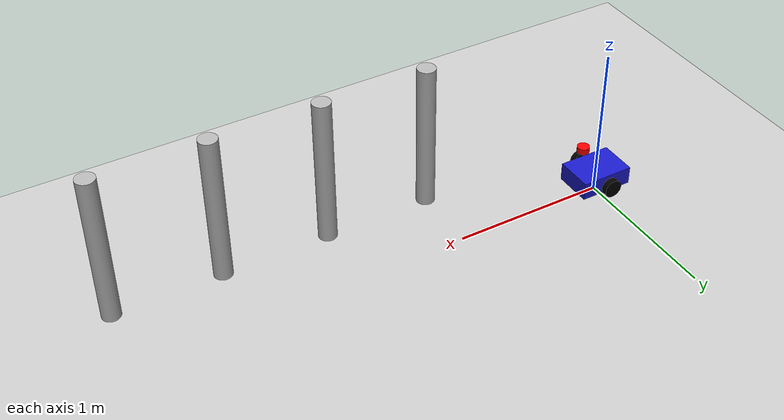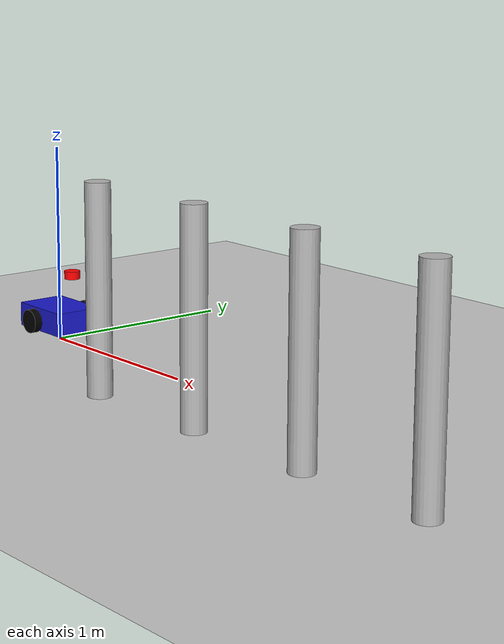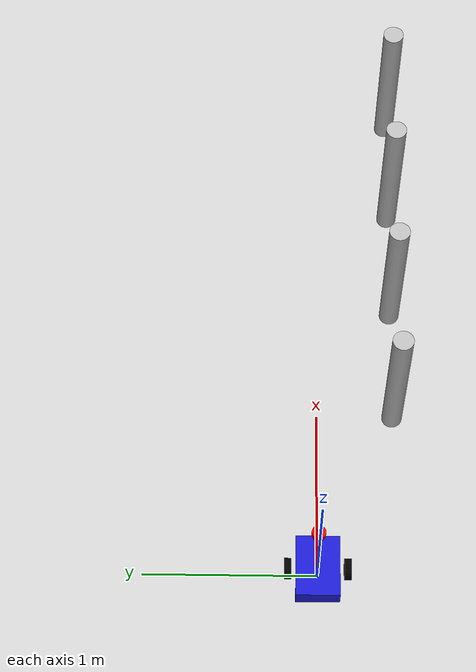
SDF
<?xml version="1.0" ?>
<sdf version="1.6">
  <world name="single_row_orchard">

    <include>
      <uri>model://sun</uri>
    </include>

    <include>
      <uri>model://ground_plane</uri>
    </include>

    <!-- SIMPLE DIFFERENTIAL DRIVE ROBOT -->
    <model name="demo_rosbot">
      <pose>0 0 0.12 0 0 0</pose>

      <link name="base_link">
        <inertial>
          <mass>2.0</mass>
          <inertia>
            <ixx>0.05</ixx>
            <iyy>0.05</iyy>
            <izz>0.05</izz>
            <ixy>0</ixy>
            <ixz>0</ixz>
            <iyz>0</iyz>
          </inertia>
        </inertial>

        <collision name="base_collision">
          <geometry>
            <box>
              <size>0.35 0.25 0.12</size>
            </box>
          </geometry>
        </collision>

        <visual name="base_visual">
          <geometry>
            <box>
              <size>0.35 0.25 0.12</size>
            </box>
          </geometry>
          <material>
            <ambient>0.1 0.1 0.8 1</ambient>
            <diffuse>0.1 0.1 0.8 1</diffuse>
          </material>
        </visual>
      </link>

      <!-- LEFT WHEEL -->
      <link name="left_wheel">
        <pose>0 0.17 0 1.5708 0 0</pose>
        <inertial>
          <mass>0.2</mass>
          <inertia>
            <ixx>0.001</ixx>
            <iyy>0.001</iyy>
            <izz>0.001</izz>
            <ixy>0</ixy>
            <ixz>0</ixz>
            <iyz>0</iyz>
          </inertia>
        </inertial>
        <collision name="collision">
          <geometry>
            <cylinder>
              <radius>0.06</radius>
              <length>0.04</length>
            </cylinder>
          </geometry>
        </collision>
        <visual name="visual">
          <geometry>
            <cylinder>
              <radius>0.06</radius>
              <length>0.04</length>
            </cylinder>
          </geometry>
          <material>
            <ambient>0 0 0 1</ambient>
            <diffuse>0 0 0 1</diffuse>
          </material>
        </visual>
      </link>

      <joint name="left_wheel_joint" type="revolute">
        <parent>base_link</parent>
        <child>left_wheel</child>
        <axis>
          <xyz>0 1 0</xyz>
        </axis>
      </joint>

      <!-- RIGHT WHEEL -->
      <link name="right_wheel">
        <pose>0 -0.17 0 1.5708 0 0</pose>
        <inertial>
          <mass>0.2</mass>
          <inertia>
            <ixx>0.001</ixx>
            <iyy>0.001</iyy>
            <izz>0.001</izz>
            <ixy>0</ixy>
            <ixz>0</ixz>
            <iyz>0</iyz>
          </inertia>
        </inertial>
        <collision name="collision">
          <geometry>
            <cylinder>
              <radius>0.06</radius>
              <length>0.04</length>
            </cylinder>
          </geometry>
        </collision>
        <visual name="visual">
          <geometry>
            <cylinder>
              <radius>0.06</radius>
              <length>0.04</length>
            </cylinder>
          </geometry>
          <material>
            <ambient>0 0 0 1</ambient>
            <diffuse>0 0 0 1</diffuse>
          </material>
        </visual>
      </link>

      <joint name="right_wheel_joint" type="revolute">
        <parent>base_link</parent>
        <child>right_wheel</child>
        <axis>
          <xyz>0 1 0</xyz>
        </axis>
      </joint>

      <link name="laser">
        <pose>0.12 0 0.24 0 0 0</pose>

        <visual name="laser_visual">
          <geometry>
            <cylinder>
              <radius>0.04</radius>
              <length>0.04</length>
            </cylinder>
          </geometry>
          <material>
            <ambient>1 0 0 1</ambient>
            <diffuse>1 0 0 1</diffuse>
          </material>
        </visual>

        <sensor name="laser_sensor" type="ray">
          <always_on>true</always_on>
          <visualize>true</visualize>
          <update_rate>10</update_rate>
          <ray>
            <scan>
              <horizontal>
                <samples>720</samples>
                <resolution>1</resolution>
                <min_angle>-3.14159</min_angle>
                <max_angle>3.14159</max_angle>
              </horizontal>
            </scan>
            <range>
              <min>0.05</min>
              <max>8.0</max>
              <resolution>0.01</resolution>
            </range>
          </ray>
          <plugin name="laser_plugin" filename="libgazebo_ros_ray_sensor.so">
            <ros>
              <remapping>~/out:=/scan</remapping>
            </ros>
            <output_type>sensor_msgs/LaserScan</output_type>
            <frame_name>laser</frame_name>
          </plugin>
        </sensor>
      </link>

      <joint name="laser_joint" type="fixed">
        <parent>base_link</parent>
        <child>laser</child>
      </joint>

      <!-- SIMPLE PLANAR MOVE PLUGIN: moves the robot directly from /cmd_vel -->
      <plugin name="planar_move" filename="libgazebo_ros_planar_move.so">
        <ros>
          <namespace>/</namespace>
        </ros>
        <command_topic>/cmd_vel</command_topic>
        <odometry_topic>/odom</odometry_topic>
        <odometry_frame>odom</odometry_frame>
        <robot_base_frame>base_link</robot_base_frame>
        <publish_odom>true</publish_odom>
        <publish_odom_tf>true</publish_odom_tf>
      </plugin>

    </model>

    <!-- TREE ROW ON ROBOT RIGHT SIDE -->
    <model name="tree_1">
      <static>true</static>
      <pose>1.0 -0.45 0.5 0 0 0</pose>
      <link name="link">
        <collision name="collision">
          <geometry>
            <cylinder>
              <radius>0.06</radius>
              <length>1.0</length>
            </cylinder>
          </geometry>
        </collision>
        <visual name="visual">
          <geometry>
            <cylinder>
              <radius>0.06</radius>
              <length>1.0</length>
            </cylinder>
          </geometry>
        </visual>
      </link>
    </model>

    <model name="tree_2">
      <static>true</static>
      <pose>1.7 -0.45 0.5 0 0 0</pose>
      <link name="link">
        <collision name="collision">
          <geometry>
            <cylinder>
              <radius>0.06</radius>
              <length>1.0</length>
            </cylinder>
          </geometry>
        </collision>
        <visual name="visual">
          <geometry>
            <cylinder>
              <radius>0.06</radius>
              <length>1.0</length>
            </cylinder>
          </geometry>
        </visual>
      </link>
    </model>

    <model name="tree_3">
      <static>true</static>
      <pose>2.4 -0.45 0.5 0 0 0</pose>
      <link name="link">
        <collision name="collision">
          <geometry>
            <cylinder>
              <radius>0.06</radius>
              <length>1.0</length>
            </cylinder>
          </geometry>
        </collision>
        <visual name="visual">
          <geometry>
            <cylinder>
              <radius>0.06</radius>
              <length>1.0</length>
            </cylinder>
          </geometry>
        </visual>
      </link>
    </model>

    <model name="tree_4">
      <static>true</static>
      <pose>3.1 -0.45 0.5 0 0 0</pose>
      <link name="link">
        <collision name="collision">
          <geometry>
            <cylinder>
              <radius>0.06</radius>
              <length>1.0</length>
            </cylinder>
          </geometry>
        </collision>
        <visual name="visual">
          <geometry>
            <cylinder>
              <radius>0.06</radius>
              <length>1.0</length>
            </cylinder>
          </geometry>
        </visual>
      </link>
    </model>
</world>
</sdf>
